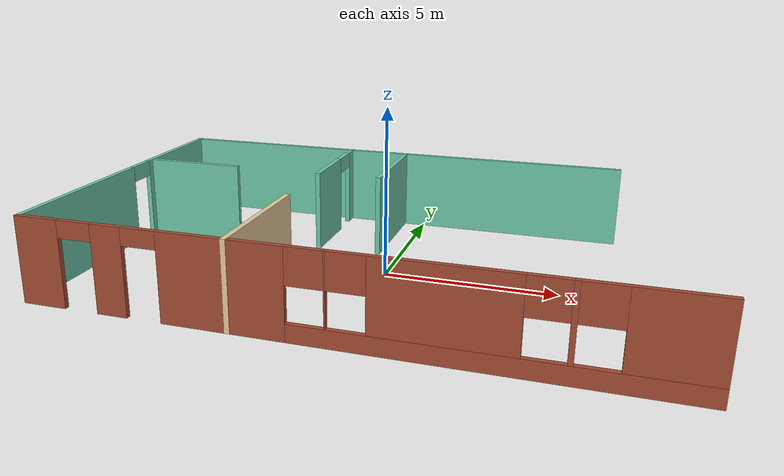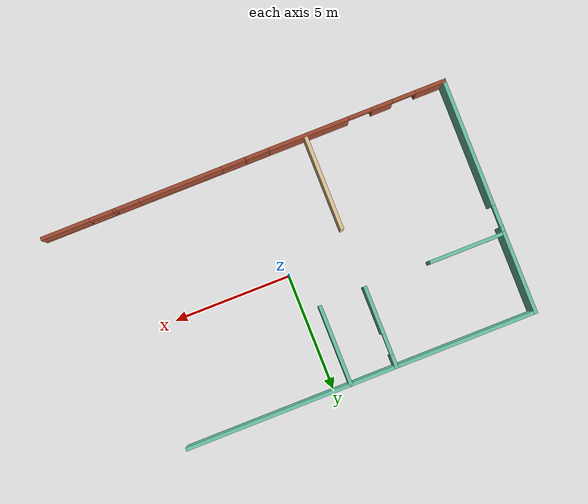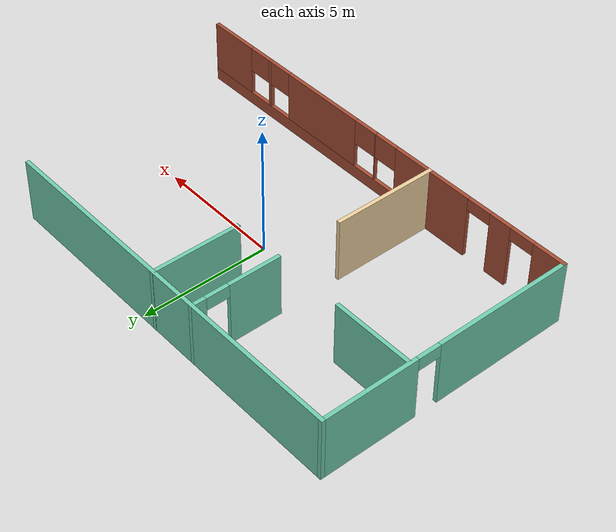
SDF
<sdf version="1.6">
 <model name="MyHouse">
  <link name="Wall_11">
   <pose>0 -4.98957 0 0 -0 0</pose>
   <visual name="Wall_11_Visual_13">
    <pose>-5.04225 0 2.25 0 -0 0</pose>
    <geometry><box><size>1 0.15 0.5</size></box></geometry>
    <material>
     <script><uri>file://media/materials/scripts/gazebo.material</uri><name>Gazebo/Bricks</name></script>
     <ambient>0.435294 0.796078 0.67451 1</ambient>
    </material>
    <meta><layer>0</layer></meta>
   </visual>
   <visual name="Wall_11_Visual_6">
    <pose>5.58627 0 1.5 0 -0 0</pose>
    <geometry><box><size>0.1334 0.15 2</size></box></geometry>
    <material>
     <script><uri>file://media/materials/scripts/gazebo.material</uri><name>Gazebo/Bricks</name></script>
     <ambient>0.435294 0.796078 0.67451 1</ambient>
    </material>
    <meta><layer>0</layer></meta>
   </visual>
   <visual name="Wall_11_Visual_2">
    <pose>-2.82171 0 1.25 0 -0 0</pose>
    <geometry><box><size>3.44108 0.15 2.5</size></box></geometry>
    <material>
     <script><uri>file://media/materials/scripts/gazebo.material</uri><name>Gazebo/Bricks</name></script>
     <ambient>0.435294 0.796078 0.67451 1</ambient>
    </material>
    <meta><layer>0</layer></meta>
   </visual>
   <visual name="Wall_11_Visual_3">
    <pose>3.82441 0 0.25 0 -0 0</pose>
    <geometry><box><size>9.85117 0.15 0.5</size></box></geometry>
    <material>
     <script><uri>file://media/materials/scripts/gazebo.material</uri><name>Gazebo/Bricks</name></script>
     <ambient>0.435294 0.796078 0.67451 1</ambient>
    </material>
    <meta><layer>0</layer></meta>
   </visual>
   <visual name="Wall_11_Visual_5">
    <pose>2.72964 0 1.5 0 -0 0</pose>
    <geometry><box><size>3.57986 0.15 2</size></box></geometry>
    <material>
     <script><uri>file://media/materials/scripts/gazebo.material</uri><name>Gazebo/Bricks</name></script>
     <ambient>0.435294 0.796078 0.67451 1</ambient>
    </material>
    <meta><layer>0</layer></meta>
   </visual>
   <visual name="Wall_11_Visual_4">
    <pose>-0.080734 0 1.5 0 -0 0</pose>
    <geometry><box><size>0.040877 0.15 2</size></box></geometry>
    <material>
     <script><uri>file://media/materials/scripts/gazebo.material</uri><name>Gazebo/Bricks</name></script>
     <ambient>0.435294 0.796078 0.67451 1</ambient>
    </material>
    <meta><layer>0</layer></meta>
   </visual>
   <visual name="Wall_11_Visual_8">
    <pose>-0.601172 0 2 0 -0 0</pose>
    <geometry><box><size>1 0.15 1</size></box></geometry>
    <material>
     <script><uri>file://media/materials/scripts/gazebo.material</uri><name>Gazebo/Bricks</name></script>
     <ambient>0.435294 0.796078 0.67451 1</ambient>
    </material>
    <meta><layer>0</layer></meta>
   </visual>
   <visual name="Wall_11_Visual_12">
    <pose>-6.93896 0 2.25 0 -0 0</pose>
    <geometry><box><size>1 0.15 0.5</size></box></geometry>
    <material>
     <script><uri>file://media/materials/scripts/gazebo.material</uri><name>Gazebo/Bricks</name></script>
     <ambient>0.435294 0.796078 0.67451 1</ambient>
    </material>
    <meta><layer>0</layer></meta>
   </visual>
   <visual name="Wall_11_Visual_11">
    <pose>6.15297 0 2 0 -0 0</pose>
    <geometry><box><size>1 0.15 1</size></box></geometry>
    <material>
     <script><uri>file://media/materials/scripts/gazebo.material</uri><name>Gazebo/Bricks</name></script>
     <ambient>0.435294 0.796078 0.67451 1</ambient>
    </material>
    <meta><layer>0</layer></meta>
   </visual>
   <visual name="Wall_11_Visual_7">
    <pose>7.70148 0 1.5 0 -0 0</pose>
    <geometry><box><size>2.09703 0.15 2</size></box></geometry>
    <material>
     <script><uri>file://media/materials/scripts/gazebo.material</uri><name>Gazebo/Bricks</name></script>
     <ambient>0.435294 0.796078 0.67451 1</ambient>
    </material>
    <meta><layer>0</layer></meta>
   </visual>
   <visual name="Wall_11_Visual_9">
    <pose>0.439705 0 2 0 -0 0</pose>
    <geometry><box><size>1 0.15 1</size></box></geometry>
    <material>
     <script><uri>file://media/materials/scripts/gazebo.material</uri><name>Gazebo/Bricks</name></script>
     <ambient>0.435294 0.796078 0.67451 1</ambient>
    </material>
    <meta><layer>0</layer></meta>
   </visual>
   <visual name="Wall_11_Visual_1">
    <pose>-5.9906 0 1.25 0 -0 0</pose>
    <geometry><box><size>0.89671 0.15 2.5</size></box></geometry>
    <material>
     <script><uri>file://media/materials/scripts/gazebo.material</uri><name>Gazebo/Bricks</name></script>
     <ambient>0.435294 0.796078 0.67451 1</ambient>
    </material>
    <meta><layer>0</layer></meta>
   </visual>
   <visual name="Wall_11_Visual_0">
    <pose>-8.09448 0 1.25 0 -0 0</pose>
    <geometry><box><size>1.31104 0.15 2.5</size></box></geometry>
    <material>
     <script><uri>file://media/materials/scripts/gazebo.material</uri><name>Gazebo/Bricks</name></script>
     <ambient>0.435294 0.796078 0.67451 1</ambient>
    </material>
    <meta><layer>0</layer></meta>
   </visual>
   <visual name="Wall_11_Visual_10">
    <pose>5.01957 0 2 0 -0 0</pose>
    <geometry><box><size>1 0.15 1</size></box></geometry>
    <material>
     <script><uri>file://media/materials/scripts/gazebo.material</uri><name>Gazebo/Bricks</name></script>
     <ambient>0.435294 0.796078 0.67451 1</ambient>
    </material>
    <meta><layer>0</layer></meta>
   </visual>
   <collision name="Wall_11_Collision_12">
    <pose>-6.93896 0 2.25 0 -0 0</pose>
    <geometry><box><size>1 0.15 0.5</size></box></geometry>
    <surface>
     <friction>
      <ode><mu>1</mu><mu2>1</mu2><fdir1>0 0 0</fdir1><slip1>0</slip1><slip2>0</slip2></ode>
      <torsional>
       <coefficient>1</coefficient>
       <patch_radius>0</patch_radius>
       <surface_radius>0</surface_radius>
       <use_patch_radius>1</use_patch_radius>
       <ode><slip>0</slip></ode>
      </torsional>
     </friction>
     <bounce><restitution_coefficient>0</restitution_coefficient><threshold>1e+06</threshold></bounce>
     <contact>
      <collide_without_contact>0</collide_without_contact>
      <collide_without_contact_bitmask>1</collide_without_contact_bitmask>
      <collide_bitmask>1</collide_bitmask>
      <ode>
       <soft_cfm>0</soft_cfm>
       <soft_erp>0.2</soft_erp>
       <kp>1e+13</kp>
       <kd>1</kd>
       <max_vel>0.01</max_vel>
       <min_depth>0</min_depth>
      </ode>
      <bullet>
       <split_impulse>1</split_impulse>
       <split_impulse_penetration_threshold>-0.01</split_impulse_penetration_threshold>
       <soft_cfm>0</soft_cfm>
       <soft_erp>0.2</soft_erp>
       <kp>1e+13</kp>
       <kd>1</kd>
      </bullet>
     </contact>
    </surface>
   </collision>
   <collision name="Wall_11_Collision_7">
    <pose>7.70148 0 1.5 0 -0 0</pose>
    <geometry><box><size>2.09703 0.15 2</size></box></geometry>
    <surface>
     <friction>
      <ode><mu>1</mu><mu2>1</mu2><fdir1>0 0 0</fdir1><slip1>0</slip1><slip2>0</slip2></ode>
      <torsional>
       <coefficient>1</coefficient>
       <patch_radius>0</patch_radius>
       <surface_radius>0</surface_radius>
       <use_patch_radius>1</use_patch_radius>
       <ode><slip>0</slip></ode>
      </torsional>
     </friction>
     <bounce><restitution_coefficient>0</restitution_coefficient><threshold>1e+06</threshold></bounce>
     <contact>
      <collide_without_contact>0</collide_without_contact>
      <collide_without_contact_bitmask>1</collide_without_contact_bitmask>
      <collide_bitmask>1</collide_bitmask>
      <ode>
       <soft_cfm>0</soft_cfm>
       <soft_erp>0.2</soft_erp>
       <kp>1e+13</kp>
       <kd>1</kd>
       <max_vel>0.01</max_vel>
       <min_depth>0</min_depth>
      </ode>
      <bullet>
       <split_impulse>1</split_impulse>
       <split_impulse_penetration_threshold>-0.01</split_impulse_penetration_threshold>
       <soft_cfm>0</soft_cfm>
       <soft_erp>0.2</soft_erp>
       <kp>1e+13</kp>
       <kd>1</kd>
      </bullet>
     </contact>
    </surface>
   </collision>
   <collision name="Wall_11_Collision_2">
    <pose>-2.82171 0 1.25 0 -0 0</pose>
    <geometry><box><size>3.44108 0.15 2.5</size></box></geometry>
    <surface>
     <friction>
      <ode><mu>1</mu><mu2>1</mu2><fdir1>0 0 0</fdir1><slip1>0</slip1><slip2>0</slip2></ode>
      <torsional>
       <coefficient>1</coefficient>
       <patch_radius>0</patch_radius>
       <surface_radius>0</surface_radius>
       <use_patch_radius>1</use_patch_radius>
       <ode><slip>0</slip></ode>
      </torsional>
     </friction>
     <bounce><restitution_coefficient>0</restitution_coefficient><threshold>1e+06</threshold></bounce>
     <contact>
      <collide_without_contact>0</collide_without_contact>
      <collide_without_contact_bitmask>1</collide_without_contact_bitmask>
      <collide_bitmask>1</collide_bitmask>
      <ode>
       <soft_cfm>0</soft_cfm>
       <soft_erp>0.2</soft_erp>
       <kp>1e+13</kp>
       <kd>1</kd>
       <max_vel>0.01</max_vel>
       <min_depth>0</min_depth>
      </ode>
      <bullet>
       <split_impulse>1</split_impulse>
       <split_impulse_penetration_threshold>-0.01</split_impulse_penetration_threshold>
       <soft_cfm>0</soft_cfm>
       <soft_erp>0.2</soft_erp>
       <kp>1e+13</kp>
       <kd>1</kd>
      </bullet>
     </contact>
    </surface>
   </collision>
   <collision name="Wall_11_Collision_8">
    <pose>-0.601172 0 2 0 -0 0</pose>
    <geometry><box><size>1 0.15 1</size></box></geometry>
    <surface>
     <friction>
      <ode><mu>1</mu><mu2>1</mu2><fdir1>0 0 0</fdir1><slip1>0</slip1><slip2>0</slip2></ode>
      <torsional>
       <coefficient>1</coefficient>
       <patch_radius>0</patch_radius>
       <surface_radius>0</surface_radius>
       <use_patch_radius>1</use_patch_radius>
       <ode><slip>0</slip></ode>
      </torsional>
     </friction>
     <bounce><restitution_coefficient>0</restitution_coefficient><threshold>1e+06</threshold></bounce>
     <contact>
      <collide_without_contact>0</collide_without_contact>
      <collide_without_contact_bitmask>1</collide_without_contact_bitmask>
      <collide_bitmask>1</collide_bitmask>
      <ode>
       <soft_cfm>0</soft_cfm>
       <soft_erp>0.2</soft_erp>
       <kp>1e+13</kp>
       <kd>1</kd>
       <max_vel>0.01</max_vel>
       <min_depth>0</min_depth>
      </ode>
      <bullet>
       <split_impulse>1</split_impulse>
       <split_impulse_penetration_threshold>-0.01</split_impulse_penetration_threshold>
       <soft_cfm>0</soft_cfm>
       <soft_erp>0.2</soft_erp>
       <kp>1e+13</kp>
       <kd>1</kd>
      </bullet>
     </contact>
    </surface>
   </collision>
   <collision name="Wall_11_Collision_13">
    <pose>-5.04225 0 2.25 0 -0 0</pose>
    <geometry><box><size>1 0.15 0.5</size></box></geometry>
    <surface>
     <friction>
      <ode><mu>1</mu><mu2>1</mu2><fdir1>0 0 0</fdir1><slip1>0</slip1><slip2>0</slip2></ode>
      <torsional>
       <coefficient>1</coefficient>
       <patch_radius>0</patch_radius>
       <surface_radius>0</surface_radius>
       <use_patch_radius>1</use_patch_radius>
       <ode><slip>0</slip></ode>
      </torsional>
     </friction>
     <bounce><restitution_coefficient>0</restitution_coefficient><threshold>1e+06</threshold></bounce>
     <contact>
      <collide_without_contact>0</collide_without_contact>
      <collide_without_contact_bitmask>1</collide_without_contact_bitmask>
      <collide_bitmask>1</collide_bitmask>
      <ode>
       <soft_cfm>0</soft_cfm>
       <soft_erp>0.2</soft_erp>
       <kp>1e+13</kp>
       <kd>1</kd>
       <max_vel>0.01</max_vel>
       <min_depth>0</min_depth>
      </ode>
      <bullet>
       <split_impulse>1</split_impulse>
       <split_impulse_penetration_threshold>-0.01</split_impulse_penetration_threshold>
       <soft_cfm>0</soft_cfm>
       <soft_erp>0.2</soft_erp>
       <kp>1e+13</kp>
       <kd>1</kd>
      </bullet>
     </contact>
    </surface>
   </collision>
   <collision name="Wall_11_Collision_6">
    <pose>5.58627 0 1.5 0 -0 0</pose>
    <geometry><box><size>0.1334 0.15 2</size></box></geometry>
    <surface>
     <friction>
      <ode><mu>1</mu><mu2>1</mu2><fdir1>0 0 0</fdir1><slip1>0</slip1><slip2>0</slip2></ode>
      <torsional>
       <coefficient>1</coefficient>
       <patch_radius>0</patch_radius>
       <surface_radius>0</surface_radius>
       <use_patch_radius>1</use_patch_radius>
       <ode><slip>0</slip></ode>
      </torsional>
     </friction>
     <bounce><restitution_coefficient>0</restitution_coefficient><threshold>1e+06</threshold></bounce>
     <contact>
      <collide_without_contact>0</collide_without_contact>
      <collide_without_contact_bitmask>1</collide_without_contact_bitmask>
      <collide_bitmask>1</collide_bitmask>
      <ode>
       <soft_cfm>0</soft_cfm>
       <soft_erp>0.2</soft_erp>
       <kp>1e+13</kp>
       <kd>1</kd>
       <max_vel>0.01</max_vel>
       <min_depth>0</min_depth>
      </ode>
      <bullet>
       <split_impulse>1</split_impulse>
       <split_impulse_penetration_threshold>-0.01</split_impulse_penetration_threshold>
       <soft_cfm>0</soft_cfm>
       <soft_erp>0.2</soft_erp>
       <kp>1e+13</kp>
       <kd>1</kd>
      </bullet>
     </contact>
    </surface>
   </collision>
   <collision name="Wall_11_Collision_3">
    <pose>3.82441 0 0.25 0 -0 0</pose>
    <geometry><box><size>9.85117 0.15 0.5</size></box></geometry>
    <surface>
     <friction>
      <ode><mu>1</mu><mu2>1</mu2><fdir1>0 0 0</fdir1><slip1>0</slip1><slip2>0</slip2></ode>
      <torsional>
       <coefficient>1</coefficient>
       <patch_radius>0</patch_radius>
       <surface_radius>0</surface_radius>
       <use_patch_radius>1</use_patch_radius>
       <ode><slip>0</slip></ode>
      </torsional>
     </friction>
     <bounce><restitution_coefficient>0</restitution_coefficient><threshold>1e+06</threshold></bounce>
     <contact>
      <collide_without_contact>0</collide_without_contact>
      <collide_without_contact_bitmask>1</collide_without_contact_bitmask>
      <collide_bitmask>1</collide_bitmask>
      <ode>
       <soft_cfm>0</soft_cfm>
       <soft_erp>0.2</soft_erp>
       <kp>1e+13</kp>
       <kd>1</kd>
       <max_vel>0.01</max_vel>
       <min_depth>0</min_depth>
      </ode>
      <bullet>
       <split_impulse>1</split_impulse>
       <split_impulse_penetration_threshold>-0.01</split_impulse_penetration_threshold>
       <soft_cfm>0</soft_cfm>
       <soft_erp>0.2</soft_erp>
       <kp>1e+13</kp>
       <kd>1</kd>
      </bullet>
     </contact>
    </surface>
   </collision>
   <collision name="Wall_11_Collision_10">
    <pose>5.01957 0 2 0 -0 0</pose>
    <geometry><box><size>1 0.15 1</size></box></geometry>
    <surface>
     <friction>
      <ode><mu>1</mu><mu2>1</mu2><fdir1>0 0 0</fdir1><slip1>0</slip1><slip2>0</slip2></ode>
      <torsional>
       <coefficient>1</coefficient>
       <patch_radius>0</patch_radius>
       <surface_radius>0</surface_radius>
       <use_patch_radius>1</use_patch_radius>
       <ode><slip>0</slip></ode>
      </torsional>
     </friction>
     <bounce><restitution_coefficient>0</restitution_coefficient><threshold>1e+06</threshold></bounce>
     <contact>
      <collide_without_contact>0</collide_without_contact>
      <collide_without_contact_bitmask>1</collide_without_contact_bitmask>
      <collide_bitmask>1</collide_bitmask>
      <ode>
       <soft_cfm>0</soft_cfm>
       <soft_erp>0.2</soft_erp>
       <kp>1e+13</kp>
       <kd>1</kd>
       <max_vel>0.01</max_vel>
       <min_depth>0</min_depth>
      </ode>
      <bullet>
       <split_impulse>1</split_impulse>
       <split_impulse_penetration_threshold>-0.01</split_impulse_penetration_threshold>
       <soft_cfm>0</soft_cfm>
       <soft_erp>0.2</soft_erp>
       <kp>1e+13</kp>
       <kd>1</kd>
      </bullet>
     </contact>
    </surface>
   </collision>
   <collision name="Wall_11_Collision_4">
    <pose>-0.080734 0 1.5 0 -0 0</pose>
    <geometry><box><size>0.040877 0.15 2</size></box></geometry>
    <surface>
     <friction>
      <ode><mu>1</mu><mu2>1</mu2><fdir1>0 0 0</fdir1><slip1>0</slip1><slip2>0</slip2></ode>
      <torsional>
       <coefficient>1</coefficient>
       <patch_radius>0</patch_radius>
       <surface_radius>0</surface_radius>
       <use_patch_radius>1</use_patch_radius>
       <ode><slip>0</slip></ode>
      </torsional>
     </friction>
     <bounce><restitution_coefficient>0</restitution_coefficient><threshold>1e+06</threshold></bounce>
     <contact>
      <collide_without_contact>0</collide_without_contact>
      <collide_without_contact_bitmask>1</collide_without_contact_bitmask>
      <collide_bitmask>1</collide_bitmask>
      <ode>
       <soft_cfm>0</soft_cfm>
       <soft_erp>0.2</soft_erp>
       <kp>1e+13</kp>
       <kd>1</kd>
       <max_vel>0.01</max_vel>
       <min_depth>0</min_depth>
      </ode>
      <bullet>
       <split_impulse>1</split_impulse>
       <split_impulse_penetration_threshold>-0.01</split_impulse_penetration_threshold>
       <soft_cfm>0</soft_cfm>
       <soft_erp>0.2</soft_erp>
       <kp>1e+13</kp>
       <kd>1</kd>
      </bullet>
     </contact>
    </surface>
   </collision>
   <collision name="Wall_11_Collision_5">
    <pose>2.72964 0 1.5 0 -0 0</pose>
    <geometry><box><size>3.57986 0.15 2</size></box></geometry>
    <surface>
     <friction>
      <ode><mu>1</mu><mu2>1</mu2><fdir1>0 0 0</fdir1><slip1>0</slip1><slip2>0</slip2></ode>
      <torsional>
       <coefficient>1</coefficient>
       <patch_radius>0</patch_radius>
       <surface_radius>0</surface_radius>
       <use_patch_radius>1</use_patch_radius>
       <ode><slip>0</slip></ode>
      </torsional>
     </friction>
     <bounce><restitution_coefficient>0</restitution_coefficient><threshold>1e+06</threshold></bounce>
     <contact>
      <collide_without_contact>0</collide_without_contact>
      <collide_without_contact_bitmask>1</collide_without_contact_bitmask>
      <collide_bitmask>1</collide_bitmask>
      <ode>
       <soft_cfm>0</soft_cfm>
       <soft_erp>0.2</soft_erp>
       <kp>1e+13</kp>
       <kd>1</kd>
       <max_vel>0.01</max_vel>
       <min_depth>0</min_depth>
      </ode>
      <bullet>
       <split_impulse>1</split_impulse>
       <split_impulse_penetration_threshold>-0.01</split_impulse_penetration_threshold>
       <soft_cfm>0</soft_cfm>
       <soft_erp>0.2</soft_erp>
       <kp>1e+13</kp>
       <kd>1</kd>
      </bullet>
     </contact>
    </surface>
   </collision>
   <collision name="Wall_11_Collision_9">
    <pose>0.439705 0 2 0 -0 0</pose>
    <geometry><box><size>1 0.15 1</size></box></geometry>
    <surface>
     <friction>
      <ode><mu>1</mu><mu2>1</mu2><fdir1>0 0 0</fdir1><slip1>0</slip1><slip2>0</slip2></ode>
      <torsional>
       <coefficient>1</coefficient>
       <patch_radius>0</patch_radius>
       <surface_radius>0</surface_radius>
       <use_patch_radius>1</use_patch_radius>
       <ode><slip>0</slip></ode>
      </torsional>
     </friction>
     <bounce><restitution_coefficient>0</restitution_coefficient><threshold>1e+06</threshold></bounce>
     <contact>
      <collide_without_contact>0</collide_without_contact>
      <collide_without_contact_bitmask>1</collide_without_contact_bitmask>
      <collide_bitmask>1</collide_bitmask>
      <ode>
       <soft_cfm>0</soft_cfm>
       <soft_erp>0.2</soft_erp>
       <kp>1e+13</kp>
       <kd>1</kd>
       <max_vel>0.01</max_vel>
       <min_depth>0</min_depth>
      </ode>
      <bullet>
       <split_impulse>1</split_impulse>
       <split_impulse_penetration_threshold>-0.01</split_impulse_penetration_threshold>
       <soft_cfm>0</soft_cfm>
       <soft_erp>0.2</soft_erp>
       <kp>1e+13</kp>
       <kd>1</kd>
      </bullet>
     </contact>
    </surface>
   </collision>
   <collision name="Wall_11_Collision_1">
    <pose>-5.9906 0 1.25 0 -0 0</pose>
    <geometry><box><size>0.89671 0.15 2.5</size></box></geometry>
    <surface>
     <friction>
      <ode><mu>1</mu><mu2>1</mu2><fdir1>0 0 0</fdir1><slip1>0</slip1><slip2>0</slip2></ode>
      <torsional>
       <coefficient>1</coefficient>
       <patch_radius>0</patch_radius>
       <surface_radius>0</surface_radius>
       <use_patch_radius>1</use_patch_radius>
       <ode><slip>0</slip></ode>
      </torsional>
     </friction>
     <bounce><restitution_coefficient>0</restitution_coefficient><threshold>1e+06</threshold></bounce>
     <contact>
      <collide_without_contact>0</collide_without_contact>
      <collide_without_contact_bitmask>1</collide_without_contact_bitmask>
      <collide_bitmask>1</collide_bitmask>
      <ode>
       <soft_cfm>0</soft_cfm>
       <soft_erp>0.2</soft_erp>
       <kp>1e+13</kp>
       <kd>1</kd>
       <max_vel>0.01</max_vel>
       <min_depth>0</min_depth>
      </ode>
      <bullet>
       <split_impulse>1</split_impulse>
       <split_impulse_penetration_threshold>-0.01</split_impulse_penetration_threshold>
       <soft_cfm>0</soft_cfm>
       <soft_erp>0.2</soft_erp>
       <kp>1e+13</kp>
       <kd>1</kd>
      </bullet>
     </contact>
    </surface>
   </collision>
   <collision name="Wall_11_Collision_0">
    <pose>-8.09448 0 1.25 0 -0 0</pose>
    <geometry><box><size>1.31104 0.15 2.5</size></box></geometry>
    <surface>
     <friction>
      <ode><mu>1</mu><mu2>1</mu2><fdir1>0 0 0</fdir1><slip1>0</slip1><slip2>0</slip2></ode>
      <torsional>
       <coefficient>1</coefficient>
       <patch_radius>0</patch_radius>
       <surface_radius>0</surface_radius>
       <use_patch_radius>1</use_patch_radius>
       <ode><slip>0</slip></ode>
      </torsional>
     </friction>
     <bounce><restitution_coefficient>0</restitution_coefficient><threshold>1e+06</threshold></bounce>
     <contact>
      <collide_without_contact>0</collide_without_contact>
      <collide_without_contact_bitmask>1</collide_without_contact_bitmask>
      <collide_bitmask>1</collide_bitmask>
      <ode>
       <soft_cfm>0</soft_cfm>
       <soft_erp>0.2</soft_erp>
       <kp>1e+13</kp>
       <kd>1</kd>
       <max_vel>0.01</max_vel>
       <min_depth>0</min_depth>
      </ode>
      <bullet>
       <split_impulse>1</split_impulse>
       <split_impulse_penetration_threshold>-0.01</split_impulse_penetration_threshold>
       <soft_cfm>0</soft_cfm>
       <soft_erp>0.2</soft_erp>
       <kp>1e+13</kp>
       <kd>1</kd>
      </bullet>
     </contact>
    </surface>
   </collision>
   <collision name="Wall_11_Collision_11">
    <pose>6.15297 0 2 0 -0 0</pose>
    <geometry><box><size>1 0.15 1</size></box></geometry>
    <surface>
     <friction>
      <ode><mu>1</mu><mu2>1</mu2><fdir1>0 0 0</fdir1><slip1>0</slip1><slip2>0</slip2></ode>
      <torsional>
       <coefficient>1</coefficient>
       <patch_radius>0</patch_radius>
       <surface_radius>0</surface_radius>
       <use_patch_radius>1</use_patch_radius>
       <ode><slip>0</slip></ode>
      </torsional>
     </friction>
     <bounce><restitution_coefficient>0</restitution_coefficient><threshold>1e+06</threshold></bounce>
     <contact>
      <collide_without_contact>0</collide_without_contact>
      <collide_without_contact_bitmask>1</collide_without_contact_bitmask>
      <collide_bitmask>1</collide_bitmask>
      <ode>
       <soft_cfm>0</soft_cfm>
       <soft_erp>0.2</soft_erp>
       <kp>1e+13</kp>
       <kd>1</kd>
       <max_vel>0.01</max_vel>
       <min_depth>0</min_depth>
      </ode>
      <bullet>
       <split_impulse>1</split_impulse>
       <split_impulse_penetration_threshold>-0.01</split_impulse_penetration_threshold>
       <soft_cfm>0</soft_cfm>
       <soft_erp>0.2</soft_erp>
       <kp>1e+13</kp>
       <kd>1</kd>
      </bullet>
     </contact>
    </surface>
   </collision>
  </link>
  <link name="Wall_18">
   <pose>-8.675 0.010434 0 0 0 -1.5708</pose>
   <visual name="Wall_18_Visual_2">
    <pose>-0.852841 0 2.25 0 -0 0</pose>
    <geometry><box><size>0.9 0.15 0.5</size></box></geometry>
    <material>
     <script><uri>file://media/materials/scripts/gazebo.material</uri><name>Gazebo/Grey</name></script>
     <ambient>0.435294 0.796078 0.67451 1</ambient>
    </material>
    <meta><layer>0</layer></meta>
   </visual>
   <visual name="Wall_18_Visual_1">
    <pose>2.33608 0 1.25 0 -0 0</pose>
    <geometry><box><size>5.47784 0.15 2.5</size></box></geometry>
    <material>
     <script><uri>file://media/materials/scripts/gazebo.material</uri><name>Gazebo/Grey</name></script>
     <ambient>0.435294 0.796078 0.67451 1</ambient>
    </material>
    <meta><layer>0</layer></meta>
   </visual>
   <visual name="Wall_18_Visual_0">
    <pose>-3.18892 0 1.25 0 -0 0</pose>
    <geometry><box><size>3.77216 0.15 2.5</size></box></geometry>
    <material>
     <script><uri>file://media/materials/scripts/gazebo.material</uri><name>Gazebo/Grey</name></script>
     <ambient>0.435294 0.796078 0.67451 1</ambient>
    </material>
    <meta><layer>0</layer></meta>
   </visual>
   <collision name="Wall_18_Collision_2">
    <pose>-0.852841 0 2.25 0 -0 0</pose>
    <geometry><box><size>0.9 0.15 0.5</size></box></geometry>
    <surface>
     <friction>
      <ode><mu>1</mu><mu2>1</mu2><fdir1>0 0 0</fdir1><slip1>0</slip1><slip2>0</slip2></ode>
      <torsional>
       <coefficient>1</coefficient>
       <patch_radius>0</patch_radius>
       <surface_radius>0</surface_radius>
       <use_patch_radius>1</use_patch_radius>
       <ode><slip>0</slip></ode>
      </torsional>
     </friction>
     <bounce><restitution_coefficient>0</restitution_coefficient><threshold>1e+06</threshold></bounce>
     <contact>
      <collide_without_contact>0</collide_without_contact>
      <collide_without_contact_bitmask>1</collide_without_contact_bitmask>
      <collide_bitmask>1</collide_bitmask>
      <ode>
       <soft_cfm>0</soft_cfm>
       <soft_erp>0.2</soft_erp>
       <kp>1e+13</kp>
       <kd>1</kd>
       <max_vel>0.01</max_vel>
       <min_depth>0</min_depth>
      </ode>
      <bullet>
       <split_impulse>1</split_impulse>
       <split_impulse_penetration_threshold>-0.01</split_impulse_penetration_threshold>
       <soft_cfm>0</soft_cfm>
       <soft_erp>0.2</soft_erp>
       <kp>1e+13</kp>
       <kd>1</kd>
      </bullet>
     </contact>
    </surface>
   </collision>
   <collision name="Wall_18_Collision_1">
    <pose>2.33608 0 1.25 0 -0 0</pose>
    <geometry><box><size>5.47784 0.15 2.5</size></box></geometry>
    <surface>
     <friction>
      <ode><mu>1</mu><mu2>1</mu2><fdir1>0 0 0</fdir1><slip1>0</slip1><slip2>0</slip2></ode>
      <torsional>
       <coefficient>1</coefficient>
       <patch_radius>0</patch_radius>
       <surface_radius>0</surface_radius>
       <use_patch_radius>1</use_patch_radius>
       <ode><slip>0</slip></ode>
      </torsional>
     </friction>
     <bounce><restitution_coefficient>0</restitution_coefficient><threshold>1e+06</threshold></bounce>
     <contact>
      <collide_without_contact>0</collide_without_contact>
      <collide_without_contact_bitmask>1</collide_without_contact_bitmask>
      <collide_bitmask>1</collide_bitmask>
      <ode>
       <soft_cfm>0</soft_cfm>
       <soft_erp>0.2</soft_erp>
       <kp>1e+13</kp>
       <kd>1</kd>
       <max_vel>0.01</max_vel>
       <min_depth>0</min_depth>
      </ode>
      <bullet>
       <split_impulse>1</split_impulse>
       <split_impulse_penetration_threshold>-0.01</split_impulse_penetration_threshold>
       <soft_cfm>0</soft_cfm>
       <soft_erp>0.2</soft_erp>
       <kp>1e+13</kp>
       <kd>1</kd>
      </bullet>
     </contact>
    </surface>
   </collision>
   <collision name="Wall_18_Collision_0">
    <pose>-3.18892 0 1.25 0 -0 0</pose>
    <geometry><box><size>3.77216 0.15 2.5</size></box></geometry>
    <surface>
     <friction>
      <ode><mu>1</mu><mu2>1</mu2><fdir1>0 0 0</fdir1><slip1>0</slip1><slip2>0</slip2></ode>
      <torsional>
       <coefficient>1</coefficient>
       <patch_radius>0</patch_radius>
       <surface_radius>0</surface_radius>
       <use_patch_radius>1</use_patch_radius>
       <ode><slip>0</slip></ode>
      </torsional>
     </friction>
     <bounce><restitution_coefficient>0</restitution_coefficient><threshold>1e+06</threshold></bounce>
     <contact>
      <collide_without_contact>0</collide_without_contact>
      <collide_without_contact_bitmask>1</collide_without_contact_bitmask>
      <collide_bitmask>1</collide_bitmask>
      <ode>
       <soft_cfm>0</soft_cfm>
       <soft_erp>0.2</soft_erp>
       <kp>1e+13</kp>
       <kd>1</kd>
       <max_vel>0.01</max_vel>
       <min_depth>0</min_depth>
      </ode>
      <bullet>
       <split_impulse>1</split_impulse>
       <split_impulse_penetration_threshold>-0.01</split_impulse_penetration_threshold>
       <soft_cfm>0</soft_cfm>
       <soft_erp>0.2</soft_erp>
       <kp>1e+13</kp>
       <kd>1</kd>
      </bullet>
     </contact>
    </surface>
   </collision>
  </link>
  <link name="Wall_23">
   <pose>-2.675 3.31043 0 0 0 -1.5708</pose>
   <visual name="Wall_23_Visual_1">
    <pose>0.744603 0 1.25 0 -0 0</pose>
    <geometry><box><size>2.06079 0.15 2.5</size></box></geometry>
    <material>
     <script><uri>file://media/materials/scripts/gazebo.material</uri><name>Gazebo/Grey</name></script>
     <ambient>0.435294 0.796078 0.67451 1</ambient>
    </material>
    <meta><layer>0</layer></meta>
   </visual>
   <visual name="Wall_23_Visual_2">
    <pose>-0.735794 0 2.25 0 -0 0</pose>
    <geometry><box><size>0.9 0.15 0.5</size></box></geometry>
    <material>
     <script><uri>file://media/materials/scripts/gazebo.material</uri><name>Gazebo/Grey</name></script>
     <ambient>0.435294 0.796078 0.67451 1</ambient>
    </material>
    <meta><layer>0</layer></meta>
   </visual>
   <visual name="Wall_23_Visual_0">
    <pose>-1.4804 0 1.25 0 -0 0</pose>
    <geometry><box><size>0.589206 0.15 2.5</size></box></geometry>
    <material>
     <script><uri>file://media/materials/scripts/gazebo.material</uri><name>Gazebo/Grey</name></script>
     <ambient>0.435294 0.796078 0.67451 1</ambient>
    </material>
    <meta><layer>0</layer></meta>
   </visual>
   <collision name="Wall_23_Collision_1">
    <pose>0.744603 0 1.25 0 -0 0</pose>
    <geometry><box><size>2.06079 0.15 2.5</size></box></geometry>
    <surface>
     <friction>
      <ode><mu>1</mu><mu2>1</mu2><fdir1>0 0 0</fdir1><slip1>0</slip1><slip2>0</slip2></ode>
      <torsional>
       <coefficient>1</coefficient>
       <patch_radius>0</patch_radius>
       <surface_radius>0</surface_radius>
       <use_patch_radius>1</use_patch_radius>
       <ode><slip>0</slip></ode>
      </torsional>
     </friction>
     <bounce><restitution_coefficient>0</restitution_coefficient><threshold>1e+06</threshold></bounce>
     <contact>
      <collide_without_contact>0</collide_without_contact>
      <collide_without_contact_bitmask>1</collide_without_contact_bitmask>
      <collide_bitmask>1</collide_bitmask>
      <ode>
       <soft_cfm>0</soft_cfm>
       <soft_erp>0.2</soft_erp>
       <kp>1e+13</kp>
       <kd>1</kd>
       <max_vel>0.01</max_vel>
       <min_depth>0</min_depth>
      </ode>
      <bullet>
       <split_impulse>1</split_impulse>
       <split_impulse_penetration_threshold>-0.01</split_impulse_penetration_threshold>
       <soft_cfm>0</soft_cfm>
       <soft_erp>0.2</soft_erp>
       <kp>1e+13</kp>
       <kd>1</kd>
      </bullet>
     </contact>
    </surface>
   </collision>
   <collision name="Wall_23_Collision_2">
    <pose>-0.735794 0 2.25 0 -0 0</pose>
    <geometry><box><size>0.9 0.15 0.5</size></box></geometry>
    <surface>
     <friction>
      <ode><mu>1</mu><mu2>1</mu2><fdir1>0 0 0</fdir1><slip1>0</slip1><slip2>0</slip2></ode>
      <torsional>
       <coefficient>1</coefficient>
       <patch_radius>0</patch_radius>
       <surface_radius>0</surface_radius>
       <use_patch_radius>1</use_patch_radius>
       <ode><slip>0</slip></ode>
      </torsional>
     </friction>
     <bounce><restitution_coefficient>0</restitution_coefficient><threshold>1e+06</threshold></bounce>
     <contact>
      <collide_without_contact>0</collide_without_contact>
      <collide_without_contact_bitmask>1</collide_without_contact_bitmask>
      <collide_bitmask>1</collide_bitmask>
      <ode>
       <soft_cfm>0</soft_cfm>
       <soft_erp>0.2</soft_erp>
       <kp>1e+13</kp>
       <kd>1</kd>
       <max_vel>0.01</max_vel>
       <min_depth>0</min_depth>
      </ode>
      <bullet>
       <split_impulse>1</split_impulse>
       <split_impulse_penetration_threshold>-0.01</split_impulse_penetration_threshold>
       <soft_cfm>0</soft_cfm>
       <soft_erp>0.2</soft_erp>
       <kp>1e+13</kp>
       <kd>1</kd>
      </bullet>
     </contact>
    </surface>
   </collision>
   <collision name="Wall_23_Collision_0">
    <pose>-1.4804 0 1.25 0 -0 0</pose>
    <geometry><box><size>0.589206 0.15 2.5</size></box></geometry>
    <surface>
     <friction>
      <ode><mu>1</mu><mu2>1</mu2><fdir1>0 0 0</fdir1><slip1>0</slip1><slip2>0</slip2></ode>
      <torsional>
       <coefficient>1</coefficient>
       <patch_radius>0</patch_radius>
       <surface_radius>0</surface_radius>
       <use_patch_radius>1</use_patch_radius>
       <ode><slip>0</slip></ode>
      </torsional>
     </friction>
     <bounce><restitution_coefficient>0</restitution_coefficient><threshold>1e+06</threshold></bounce>
     <contact>
      <collide_without_contact>0</collide_without_contact>
      <collide_without_contact_bitmask>1</collide_without_contact_bitmask>
      <collide_bitmask>1</collide_bitmask>
      <ode>
       <soft_cfm>0</soft_cfm>
       <soft_erp>0.2</soft_erp>
       <kp>1e+13</kp>
       <kd>1</kd>
       <max_vel>0.01</max_vel>
       <min_depth>0</min_depth>
      </ode>
      <bullet>
       <split_impulse>1</split_impulse>
       <split_impulse_penetration_threshold>-0.01</split_impulse_penetration_threshold>
       <soft_cfm>0</soft_cfm>
       <soft_erp>0.2</soft_erp>
       <kp>1e+13</kp>
       <kd>1</kd>
      </bullet>
     </contact>
    </surface>
   </collision>
  </link>
  <link name="Wall_26">
   <pose>-1.175 5.01043 0 0 -0 0</pose>
   <visual name="Wall_26_Visual">
    <pose>0 0 1.25 0 -0 0</pose>
    <geometry><box><size>15.15 0.15 2.5</size></box></geometry>
    <material>
     <script><uri>file://media/materials/scripts/gazebo.material</uri><name>Gazebo/Grey</name></script>
     <ambient>0.435294 0.796078 0.67451 1</ambient>
    </material>
    <meta><layer>0</layer></meta>
   </visual>
   <collision name="Wall_26_Collision">
    <pose>0 0 1.25 0 -0 0</pose>
    <geometry><box><size>15.15 0.15 2.5</size></box></geometry>
    <surface>
     <friction>
      <ode><mu>1</mu><mu2>1</mu2><fdir1>0 0 0</fdir1><slip1>0</slip1><slip2>0</slip2></ode>
      <torsional>
       <coefficient>1</coefficient>
       <patch_radius>0</patch_radius>
       <surface_radius>0</surface_radius>
       <use_patch_radius>1</use_patch_radius>
       <ode><slip>0</slip></ode>
      </torsional>
     </friction>
     <bounce><restitution_coefficient>0</restitution_coefficient><threshold>1e+06</threshold></bounce>
     <contact>
      <collide_without_contact>0</collide_without_contact>
      <collide_without_contact_bitmask>1</collide_without_contact_bitmask>
      <collide_bitmask>1</collide_bitmask>
      <ode>
       <soft_cfm>0</soft_cfm>
       <soft_erp>0.2</soft_erp>
       <kp>1e+13</kp>
       <kd>1</kd>
       <max_vel>0.01</max_vel>
       <min_depth>0</min_depth>
      </ode>
      <bullet>
       <split_impulse>1</split_impulse>
       <split_impulse_penetration_threshold>-0.01</split_impulse_penetration_threshold>
       <soft_cfm>0</soft_cfm>
       <soft_erp>0.2</soft_erp>
       <kp>1e+13</kp>
       <kd>1</kd>
      </bullet>
     </contact>
    </surface>
   </collision>
  </link>
  <link name="Wall_34">
   <pose>-0.712613 3.34563 0 0 -0 1.5708</pose>
   <visual name="Wall_34_Visual">
    <pose>0 0 1.25 0 -0 0</pose>
    <geometry><box><size>3.5 0.15 2.5</size></box></geometry>
    <material>
     <script><uri>file://media/materials/scripts/gazebo.material</uri><name>Gazebo/Grey</name></script>
     <ambient>0.435294 0.796078 0.67451 1</ambient>
    </material>
    <meta><layer>0</layer></meta>
   </visual>
   <collision name="Wall_34_Collision">
    <pose>0 0 1.25 0 -0 0</pose>
    <geometry><box><size>3.5 0.15 2.5</size></box></geometry>
    <surface>
     <friction>
      <ode><mu>1</mu><mu2>1</mu2><fdir1>0 0 0</fdir1><slip1>0</slip1><slip2>0</slip2></ode>
      <torsional>
       <coefficient>1</coefficient>
       <patch_radius>0</patch_radius>
       <surface_radius>0</surface_radius>
       <use_patch_radius>1</use_patch_radius>
       <ode><slip>0</slip></ode>
      </torsional>
     </friction>
     <bounce><restitution_coefficient>0</restitution_coefficient><threshold>1e+06</threshold></bounce>
     <contact>
      <collide_without_contact>0</collide_without_contact>
      <collide_without_contact_bitmask>1</collide_without_contact_bitmask>
      <collide_bitmask>1</collide_bitmask>
      <ode>
       <soft_cfm>0</soft_cfm>
       <soft_erp>0.2</soft_erp>
       <kp>1e+13</kp>
       <kd>1</kd>
       <max_vel>0.01</max_vel>
       <min_depth>0</min_depth>
      </ode>
      <bullet>
       <split_impulse>1</split_impulse>
       <split_impulse_penetration_threshold>-0.01</split_impulse_penetration_threshold>
       <soft_cfm>0</soft_cfm>
       <soft_erp>0.2</soft_erp>
       <kp>1e+13</kp>
       <kd>1</kd>
      </bullet>
     </contact>
    </surface>
   </collision>
  </link>
  <link name="Wall_39">
   <pose>-7.081 1.60443 0 0 -0 0</pose>
   <visual name="Wall_39_Visual">
    <pose>0 0 1.25 0 -0 0</pose>
    <geometry><box><size>3.25 0.15 2.5</size></box></geometry>
    <material>
     <script><uri>file://media/materials/scripts/gazebo.material</uri><name>Gazebo/Grey</name></script>
     <ambient>0.435294 0.796078 0.67451 1</ambient>
    </material>
    <meta><layer>0</layer></meta>
   </visual>
   <collision name="Wall_39_Collision">
    <pose>0 0 1.25 0 -0 0</pose>
    <geometry><box><size>3.25 0.15 2.5</size></box></geometry>
    <surface>
     <friction>
      <ode><mu>1</mu><mu2>1</mu2><fdir1>0 0 0</fdir1><slip1>0</slip1><slip2>0</slip2></ode>
      <torsional>
       <coefficient>1</coefficient>
       <patch_radius>0</patch_radius>
       <surface_radius>0</surface_radius>
       <use_patch_radius>1</use_patch_radius>
       <ode><slip>0</slip></ode>
      </torsional>
     </friction>
     <bounce><restitution_coefficient>0</restitution_coefficient><threshold>1e+06</threshold></bounce>
     <contact>
      <collide_without_contact>0</collide_without_contact>
      <collide_without_contact_bitmask>1</collide_without_contact_bitmask>
      <collide_bitmask>1</collide_bitmask>
      <ode>
       <soft_cfm>0</soft_cfm>
       <soft_erp>0.2</soft_erp>
       <kp>1e+13</kp>
       <kd>1</kd>
       <max_vel>0.01</max_vel>
       <min_depth>0</min_depth>
      </ode>
      <bullet>
       <split_impulse>1</split_impulse>
       <split_impulse_penetration_threshold>-0.01</split_impulse_penetration_threshold>
       <soft_cfm>0</soft_cfm>
       <soft_erp>0.2</soft_erp>
       <kp>1e+13</kp>
       <kd>1</kd>
      </bullet>
     </contact>
    </surface>
   </collision>
  </link>
  <link name="Wall_58">
   <pose>-2.67353 -2.99175 0 0 0 -1.5708</pose>
   <inertial>
    <mass>1.51055</mass>
    <inertia><ixx>0.789576</ixx><ixy>0</ixy><ixz>0</ixz><iyy>2.951</iyy><iyz>0</iyz><izz>2.16708</izz></inertia>
   </inertial>
   <visual name="Wall_58_Visual">
    <pose>0 0 1.25 0 -0 0</pose>
    <geometry><box><size>4.14646 0.15 2.5</size></box></geometry>
    <material>
     <script><uri>file://media/materials/scripts/gazebo.material</uri><name>Gazebo/Grey</name></script>
     <ambient>0.922 0.808 0.616 1</ambient>
     <shader type="vertex"><normal_map>__default__</normal_map></shader>
     <diffuse>0.7 0.7 0.7 1</diffuse>
     <specular>0.01 0.01 0.01 1</specular>
     <emissive>0 0 0 1</emissive>
    </material>
    <meta><layer>0</layer></meta>
   </visual>
   <collision name="Wall_58_Collision">
    <pose>0 0 1.25 0 -0 0</pose>
    <geometry><box><size>4.14646 0.15 2.5</size></box></geometry>
    <surface>
     <friction>
      <ode><mu>1</mu><mu2>1</mu2><fdir1>0 0 0</fdir1><slip1>0</slip1><slip2>0</slip2></ode>
      <torsional>
       <coefficient>1</coefficient>
       <patch_radius>0</patch_radius>
       <surface_radius>0</surface_radius>
       <use_patch_radius>1</use_patch_radius>
       <ode><slip>0</slip></ode>
      </torsional>
     </friction>
     <bounce><restitution_coefficient>0</restitution_coefficient><threshold>1e+06</threshold></bounce>
     <contact>
      <collide_without_contact>0</collide_without_contact>
      <collide_without_contact_bitmask>1</collide_without_contact_bitmask>
      <collide_bitmask>1</collide_bitmask>
      <ode>
       <soft_cfm>0</soft_cfm>
       <soft_erp>0.2</soft_erp>
       <kp>1e+13</kp>
       <kd>1</kd>
       <max_vel>0.01</max_vel>
       <min_depth>0</min_depth>
      </ode>
      <bullet>
       <split_impulse>1</split_impulse>
       <split_impulse_penetration_threshold>-0.01</split_impulse_penetration_threshold>
       <soft_cfm>0</soft_cfm>
       <soft_erp>0.2</soft_erp>
       <kp>1e+13</kp>
       <kd>1</kd>
      </bullet>
     </contact>
    </surface>
   </collision>
  </link>
  <static>1</static>
 </model>
</sdf>
